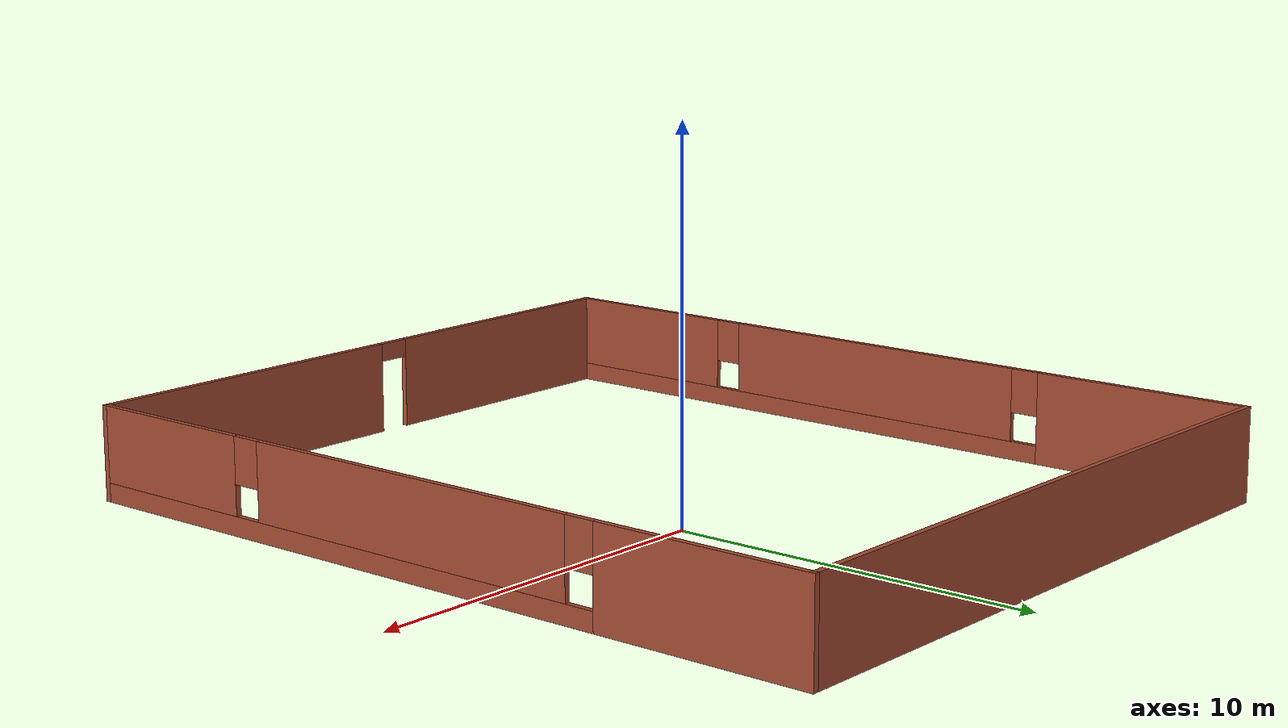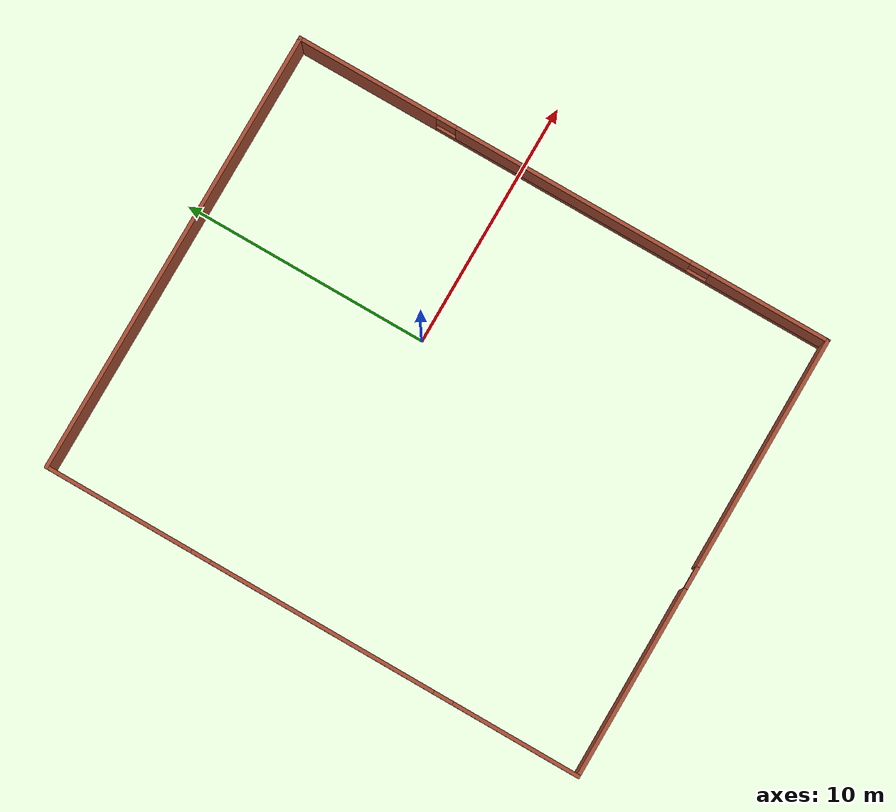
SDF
<?xml version='1.0'?>
<sdf version='1.5'>
  <model name='wall'>
    <pose frame=''>-1.88566 -1.77463 0 0 -0 0</pose>
    <link name='Wall_11'>
      <collision name='Wall_11_Collision'>
        <geometry>
          <box>
            <size>18.25 0.15 2.5</size>
          </box>
        </geometry>
        <pose frame=''>0 0 1.25 0 -0 0</pose>
      </collision>
      <visual name='Wall_11_Visual'>
        <pose frame=''>0 0 1.25 0 -0 0</pose>
        <geometry>
          <box>
            <size>18.25 0.15 2.5</size>
          </box>
        </geometry>
        <material>
          <script>
            <uri>file://media/materials/scripts/gazebo.material</uri>
            <name>Gazebo/Bricks</name>
          </script>
          <ambient>1 1 1 1</ambient>
        </material>
      </visual>
      <pose frame=''>0 11.05 0 0 -0 3.14159</pose>
    </link>
    <link name='Wall_12'>
      <pose frame=''>-9.05 0 0 0 0 -1.5708</pose>
      <visual name='Wall_12_Visual_0'>
        <pose frame=''>-8.06105 0 1.25 0 -0 0</pose>
        <geometry>
          <box>
            <size>6.12791 0.15 2.5</size>
          </box>
        </geometry>
        <material>
          <script>
            <uri>file://media/materials/scripts/gazebo.material</uri>
            <name>Gazebo/Bricks</name>
          </script>
          <ambient>1 1 1 1</ambient>
        </material>
      </visual>
      <collision name='Wall_12_Collision_0'>
        <geometry>
          <box>
            <size>6.12791 0.15 2.5</size>
          </box>
        </geometry>
        <pose frame=''>-8.06105 0 1.25 0 -0 0</pose>
      </collision>
      <visual name='Wall_12_Visual_1'>
        <pose frame=''>3.06395 0 0.25 0 -0 0</pose>
        <geometry>
          <box>
            <size>16.1221 0.15 0.5</size>
          </box>
        </geometry>
        <material>
          <script>
            <uri>file://media/materials/scripts/gazebo.material</uri>
            <name>Gazebo/Bricks</name>
          </script>
          <ambient>1 1 1 1</ambient>
        </material>
      </visual>
      <collision name='Wall_12_Collision_1'>
        <geometry>
          <box>
            <size>16.1221 0.15 0.5</size>
          </box>
        </geometry>
        <pose frame=''>3.06395 0 0.25 0 -0 0</pose>
      </collision>
      <visual name='Wall_12_Visual_2'>
        <pose frame=''>0.438167 0 1.5 0 -0 0</pose>
        <geometry>
          <box>
            <size>9.27052 0.15 2</size>
          </box>
        </geometry>
        <material>
          <script>
            <uri>file://media/materials/scripts/gazebo.material</uri>
            <name>Gazebo/Bricks</name>
          </script>
          <ambient>1 1 1 1</ambient>
        </material>
      </visual>
      <collision name='Wall_12_Collision_2'>
        <geometry>
          <box>
            <size>9.27052 0.15 2</size>
          </box>
        </geometry>
        <pose frame=''>0.438167 0 1.5 0 -0 0</pose>
      </collision>
      <visual name='Wall_12_Visual_3'>
        <pose frame=''>8.49921 0 1.5 0 -0 0</pose>
        <geometry>
          <box>
            <size>5.25157 0.15 2</size>
          </box>
        </geometry>
        <material>
          <script>
            <uri>file://media/materials/scripts/gazebo.material</uri>
            <name>Gazebo/Bricks</name>
          </script>
          <ambient>1 1 1 1</ambient>
        </material>
      </visual>
      <collision name='Wall_12_Collision_3'>
        <geometry>
          <box>
            <size>5.25157 0.15 2</size>
          </box>
        </geometry>
        <pose frame=''>8.49921 0 1.5 0 -0 0</pose>
      </collision>
      <visual name='Wall_12_Visual_4'>
        <pose frame=''>-4.5971 0 1.9 0 -0 0</pose>
        <geometry>
          <box>
            <size>0.8 0.15 1.2</size>
          </box>
        </geometry>
        <material>
          <script>
            <uri>file://media/materials/scripts/gazebo.material</uri>
            <name>Gazebo/Bricks</name>
          </script>
          <ambient>1 1 1 1</ambient>
        </material>
      </visual>
      <collision name='Wall_12_Collision_4'>
        <geometry>
          <box>
            <size>0.8 0.15 1.2</size>
          </box>
        </geometry>
        <pose frame=''>-4.5971 0 1.9 0 -0 0</pose>
      </collision>
      <visual name='Wall_12_Visual_5'>
        <pose frame=''>5.47343 0 1.9 0 -0 0</pose>
        <geometry>
          <box>
            <size>0.8 0.15 1.2</size>
          </box>
        </geometry>
        <material>
          <script>
            <uri>file://media/materials/scripts/gazebo.material</uri>
            <name>Gazebo/Bricks</name>
          </script>
          <ambient>1 1 1 1</ambient>
        </material>
      </visual>
      <collision name='Wall_12_Collision_5'>
        <geometry>
          <box>
            <size>0.8 0.15 1.2</size>
          </box>
        </geometry>
        <pose frame=''>5.47343 0 1.9 0 -0 0</pose>
      </collision>
    </link>
    <link name='Wall_13'>
      <pose frame=''>0 -11.05 0 0 -0 0</pose>
      <visual name='Wall_13_Visual_0'>
        <pose frame=''>-5.21504 0 1.25 0 -0 0</pose>
        <geometry>
          <box>
            <size>7.81991 0.15 2.5</size>
          </box>
        </geometry>
        <material>
          <script>
            <uri>file://media/materials/scripts/gazebo.material</uri>
            <name>Gazebo/Bricks</name>
          </script>
          <ambient>1 1 1 1</ambient>
        </material>
      </visual>
      <collision name='Wall_13_Collision_0'>
        <geometry>
          <box>
            <size>7.81991 0.15 2.5</size>
          </box>
        </geometry>
        <pose frame=''>-5.21504 0 1.25 0 -0 0</pose>
      </collision>
      <visual name='Wall_13_Visual_1'>
        <pose frame=''>4.35996 0 1.25 0 -0 0</pose>
        <geometry>
          <box>
            <size>9.53009 0.15 2.5</size>
          </box>
        </geometry>
        <material>
          <script>
            <uri>file://media/materials/scripts/gazebo.material</uri>
            <name>Gazebo/Bricks</name>
          </script>
          <ambient>1 1 1 1</ambient>
        </material>
      </visual>
      <collision name='Wall_13_Collision_1'>
        <geometry>
          <box>
            <size>9.53009 0.15 2.5</size>
          </box>
        </geometry>
        <pose frame=''>4.35996 0 1.25 0 -0 0</pose>
      </collision>
      <visual name='Wall_13_Visual_2'>
        <pose frame=''>-0.855087 0 2.25 0 -0 0</pose>
        <geometry>
          <box>
            <size>0.9 0.15 0.5</size>
          </box>
        </geometry>
        <material>
          <script>
            <uri>file://media/materials/scripts/gazebo.material</uri>
            <name>Gazebo/Bricks</name>
          </script>
          <ambient>1 1 1 1</ambient>
        </material>
      </visual>
      <collision name='Wall_13_Collision_2'>
        <geometry>
          <box>
            <size>0.9 0.15 0.5</size>
          </box>
        </geometry>
        <pose frame=''>-0.855087 0 2.25 0 -0 0</pose>
      </collision>
    </link>
    <link name='Wall_6'>
      <pose frame=''>9.05 0 0 0 0 -1.5708</pose>
      <visual name='Wall_6_Visual_0'>
        <pose frame=''>-8.20027 0 1.25 0 -0 0</pose>
        <geometry>
          <box>
            <size>5.84946 0.15 2.5</size>
          </box>
        </geometry>
        <material>
          <script>
            <uri>file://media/materials/scripts/gazebo.material</uri>
            <name>Gazebo/Bricks</name>
          </script>
          <ambient>1 1 1 1</ambient>
        </material>
      </visual>
      <collision name='Wall_6_Collision_0'>
        <geometry>
          <box>
            <size>5.84946 0.15 2.5</size>
          </box>
        </geometry>
        <pose frame=''>-8.20027 0 1.25 0 -0 0</pose>
      </collision>
      <visual name='Wall_6_Visual_1'>
        <pose frame=''>2.92473 0 0.25 0 -0 0</pose>
        <geometry>
          <box>
            <size>16.4005 0.15 0.5</size>
          </box>
        </geometry>
        <material>
          <script>
            <uri>file://media/materials/scripts/gazebo.material</uri>
            <name>Gazebo/Bricks</name>
          </script>
          <ambient>1 1 1 1</ambient>
        </material>
      </visual>
      <collision name='Wall_6_Collision_1'>
        <geometry>
          <box>
            <size>16.4005 0.15 0.5</size>
          </box>
        </geometry>
        <pose frame=''>2.92473 0 0.25 0 -0 0</pose>
      </collision>
      <visual name='Wall_6_Visual_2'>
        <pose frame=''>0.438167 0 1.5 0 -0 0</pose>
        <geometry>
          <box>
            <size>9.82742 0.15 2</size>
          </box>
        </geometry>
        <material>
          <script>
            <uri>file://media/materials/scripts/gazebo.material</uri>
            <name>Gazebo/Bricks</name>
          </script>
          <ambient>1 1 1 1</ambient>
        </material>
      </visual>
      <collision name='Wall_6_Collision_2'>
        <geometry>
          <box>
            <size>9.82742 0.15 2</size>
          </box>
        </geometry>
        <pose frame=''>0.438167 0 1.5 0 -0 0</pose>
      </collision>
      <visual name='Wall_6_Visual_3'>
        <pose frame=''>8.63844 0 1.5 0 -0 0</pose>
        <geometry>
          <box>
            <size>4.97312 0.15 2</size>
          </box>
        </geometry>
        <material>
          <script>
            <uri>file://media/materials/scripts/gazebo.material</uri>
            <name>Gazebo/Bricks</name>
          </script>
          <ambient>1 1 1 1</ambient>
        </material>
      </visual>
      <collision name='Wall_6_Collision_3'>
        <geometry>
          <box>
            <size>4.97312 0.15 2</size>
          </box>
        </geometry>
        <pose frame=''>8.63844 0 1.5 0 -0 0</pose>
      </collision>
      <visual name='Wall_6_Visual_4'>
        <pose frame=''>-4.87554 0 1.9 0 -0 0</pose>
        <geometry>
          <box>
            <size>0.8 0.15 1.2</size>
          </box>
        </geometry>
        <material>
          <script>
            <uri>file://media/materials/scripts/gazebo.material</uri>
            <name>Gazebo/Bricks</name>
          </script>
          <ambient>1 1 1 1</ambient>
        </material>
      </visual>
      <collision name='Wall_6_Collision_4'>
        <geometry>
          <box>
            <size>0.8 0.15 1.2</size>
          </box>
        </geometry>
        <pose frame=''>-4.87554 0 1.9 0 -0 0</pose>
      </collision>
      <visual name='Wall_6_Visual_5'>
        <pose frame=''>5.75188 0 1.9 0 -0 0</pose>
        <geometry>
          <box>
            <size>0.8 0.15 1.2</size>
          </box>
        </geometry>
        <material>
          <script>
            <uri>file://media/materials/scripts/gazebo.material</uri>
            <name>Gazebo/Bricks</name>
          </script>
          <ambient>1 1 1 1</ambient>
        </material>
      </visual>
      <collision name='Wall_6_Collision_5'>
        <geometry>
          <box>
            <size>0.8 0.15 1.2</size>
          </box>
        </geometry>
        <pose frame=''>5.75188 0 1.9 0 -0 0</pose>
      </collision>
    </link>
    <static>1</static>
  </model>
</sdf>
